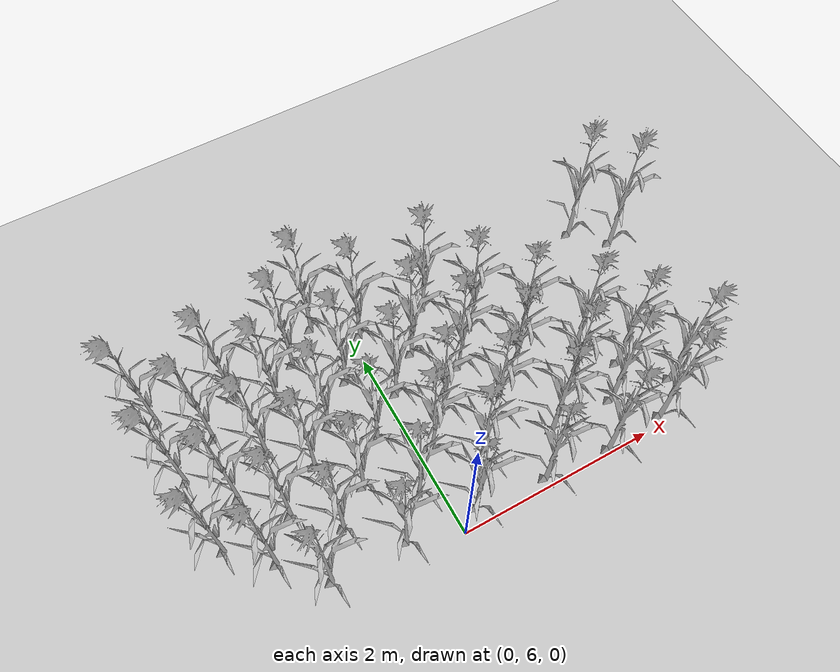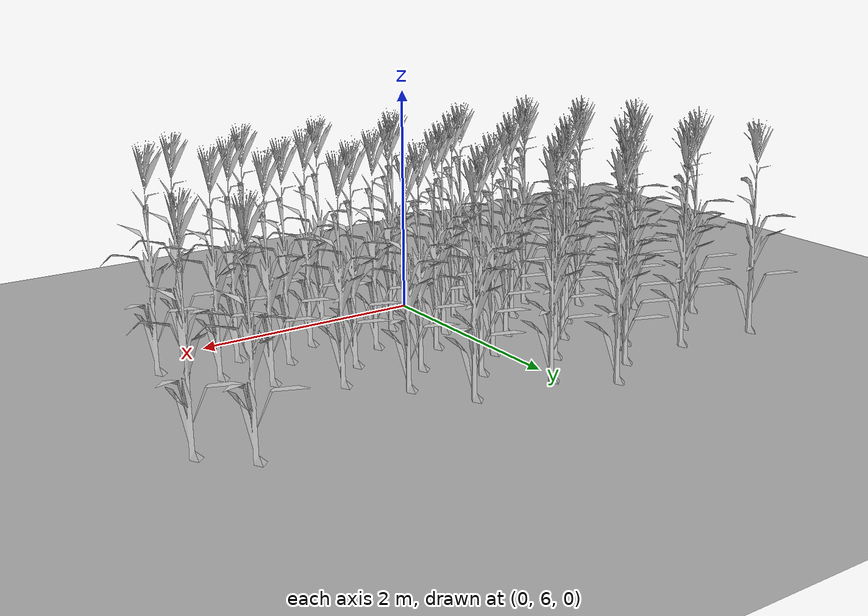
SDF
<sdf version="1.7">
 <world name="farmland_world">
  <model name="ground_plane">
   <static>1</static>
   <link name="link">
    <collision name="collision">
     <geometry><plane><normal>0 0 1</normal><size>40.0 40.0</size></plane></geometry>
     <surface><friction><ode><mu>100</mu><mu2>50</mu2></ode></friction></surface>
    </collision>
    <visual name="visual">
     <cast_shadows>0</cast_shadows>
     <geometry><plane><normal>0 0 1</normal><size>40.0 40.0</size></plane></geometry>
     <material>
      <script><uri>file://media/materials/scripts/gazebo.material</uri><name>Gazebo/Grey</name></script>
     </material>
    </visual>
   </link>
  </model>
  <model name="tree_3_17">
   <static>1</static>
   <link name="link">
    <collision name="collision">
     <geometry><mesh><uri>model://Corn_low_poly/corn.obj</uri><scale>1 1 1</scale></mesh></geometry>
     <surface><friction><ode><mu>100</mu><mu2>50</mu2></ode></friction></surface>
    </collision>
    <visual name="visual">
     <geometry><mesh><uri>model://Corn_low_poly/corn.obj</uri><scale>1 1 1</scale></mesh></geometry>
    </visual>
   </link>
   <pose>-1.2331043694419168 6.210459773600698 0 0 0 0</pose>
  </model>
  <model name="tree_3_18">
   <static>1</static>
   <link name="link">
    <collision name="collision">
     <geometry><mesh><uri>model://Corn_low_poly/corn.obj</uri><scale>1 1 1</scale></mesh></geometry>
     <surface><friction><ode><mu>100</mu><mu2>50</mu2></ode></friction></surface>
    </collision>
    <visual name="visual">
     <geometry><mesh><uri>model://Corn_low_poly/corn.obj</uri><scale>1 1 1</scale></mesh></geometry>
    </visual>
   </link>
   <pose>-1.5919552716491105 6.589156397790697 0 0 0 0</pose>
  </model>
  <model name="tree_3_19">
   <static>1</static>
   <link name="link">
    <collision name="collision">
     <geometry><mesh><uri>model://Corn_low_poly/corn.obj</uri><scale>1 1 1</scale></mesh></geometry>
     <surface><friction><ode><mu>100</mu><mu2>50</mu2></ode></friction></surface>
    </collision>
    <visual name="visual">
     <geometry><mesh><uri>model://Corn_low_poly/corn.obj</uri><scale>1 1 1</scale></mesh></geometry>
    </visual>
   </link>
   <pose>-1.9576749632588373 6.926214422861499 0 0 0 0</pose>
  </model>
  <model name="tree_3_58">
   <static>1</static>
   <link name="link">
    <collision name="collision">
     <geometry><mesh><uri>model://Corn_low_poly/corn.obj</uri><scale>1 1 1</scale></mesh></geometry>
     <surface><friction><ode><mu>100</mu><mu2>50</mu2></ode></friction></surface>
    </collision>
    <visual name="visual">
     <geometry><mesh><uri>model://Corn_low_poly/corn.obj</uri><scale>1 1 1</scale></mesh></geometry>
    </visual>
   </link>
   <pose>-0.4912142954500292 6.206846466846374 0 0 0 0</pose>
  </model>
  <model name="tree_3_59">
   <static>1</static>
   <link name="link">
    <collision name="collision">
     <geometry><mesh><uri>model://Corn_low_poly/corn.obj</uri><scale>1 1 1</scale></mesh></geometry>
     <surface><friction><ode><mu>100</mu><mu2>50</mu2></ode></friction></surface>
    </collision>
    <visual name="visual">
     <geometry><mesh><uri>model://Corn_low_poly/corn.obj</uri><scale>1 1 1</scale></mesh></geometry>
    </visual>
   </link>
   <pose>-0.9284402881562985 6.589801662348872 0 0 0 0</pose>
  </model>
  <model name="tree_3_60">
   <static>1</static>
   <link name="link">
    <collision name="collision">
     <geometry><mesh><uri>model://Corn_low_poly/corn.obj</uri><scale>1 1 1</scale></mesh></geometry>
     <surface><friction><ode><mu>100</mu><mu2>50</mu2></ode></friction></surface>
    </collision>
    <visual name="visual">
     <geometry><mesh><uri>model://Corn_low_poly/corn.obj</uri><scale>1 1 1</scale></mesh></geometry>
    </visual>
   </link>
   <pose>-1.2962200353937587 6.928572871125287 0 0 0 0</pose>
  </model>
  <model name="tree_3_61">
   <static>1</static>
   <link name="link">
    <collision name="collision">
     <geometry><mesh><uri>model://Corn_low_poly/corn.obj</uri><scale>1 1 1</scale></mesh></geometry>
     <surface><friction><ode><mu>100</mu><mu2>50</mu2></ode></friction></surface>
    </collision>
    <visual name="visual">
     <geometry><mesh><uri>model://Corn_low_poly/corn.obj</uri><scale>1 1 1</scale></mesh></geometry>
    </visual>
   </link>
   <pose>-1.6474239404918627 7.30900446934492 0 0 0 0</pose>
  </model>
  <model name="tree_3_62">
   <static>1</static>
   <link name="link">
    <collision name="collision">
     <geometry><mesh><uri>model://Corn_low_poly/corn.obj</uri><scale>1 1 1</scale></mesh></geometry>
     <surface><friction><ode><mu>100</mu><mu2>50</mu2></ode></friction></surface>
    </collision>
    <visual name="visual">
     <geometry><mesh><uri>model://Corn_low_poly/corn.obj</uri><scale>1 1 1</scale></mesh></geometry>
    </visual>
   </link>
   <pose>-2.0073132322144356 7.690980569186514 0 0 0 0</pose>
  </model>
  <model name="tree_3_99">
   <static>1</static>
   <link name="link">
    <collision name="collision">
     <geometry><mesh><uri>model://Corn_low_poly/corn.obj</uri><scale>1 1 1</scale></mesh></geometry>
     <surface><friction><ode><mu>100</mu><mu2>50</mu2></ode></friction></surface>
    </collision>
    <visual name="visual">
     <geometry><mesh><uri>model://Corn_low_poly/corn.obj</uri><scale>1 1 1</scale></mesh></geometry>
    </visual>
   </link>
   <pose>0.21755249482552663 6.176583918930253 0 0 0 0</pose>
  </model>
  <model name="tree_3_100">
   <static>1</static>
   <link name="link">
    <collision name="collision">
     <geometry><mesh><uri>model://Corn_low_poly/corn.obj</uri><scale>1 1 1</scale></mesh></geometry>
     <surface><friction><ode><mu>100</mu><mu2>50</mu2></ode></friction></surface>
    </collision>
    <visual name="visual">
     <geometry><mesh><uri>model://Corn_low_poly/corn.obj</uri><scale>1 1 1</scale></mesh></geometry>
    </visual>
   </link>
   <pose>-0.16875573212024889 6.540329089779795 0 0 0 0</pose>
  </model>
  <model name="tree_3_101">
   <static>1</static>
   <link name="link">
    <collision name="collision">
     <geometry><mesh><uri>model://Corn_low_poly/corn.obj</uri><scale>1 1 1</scale></mesh></geometry>
     <surface><friction><ode><mu>100</mu><mu2>50</mu2></ode></friction></surface>
    </collision>
    <visual name="visual">
     <geometry><mesh><uri>model://Corn_low_poly/corn.obj</uri><scale>1 1 1</scale></mesh></geometry>
    </visual>
   </link>
   <pose>-0.5900489050490194 6.85611674523748 0 0 0 0</pose>
  </model>
  <model name="tree_3_102">
   <static>1</static>
   <link name="link">
    <collision name="collision">
     <geometry><mesh><uri>model://Corn_low_poly/corn.obj</uri><scale>1 1 1</scale></mesh></geometry>
     <surface><friction><ode><mu>100</mu><mu2>50</mu2></ode></friction></surface>
    </collision>
    <visual name="visual">
     <geometry><mesh><uri>model://Corn_low_poly/corn.obj</uri><scale>1 1 1</scale></mesh></geometry>
    </visual>
   </link>
   <pose>-0.8964899712963574 7.2489524793954505 0 0 0 0</pose>
  </model>
  <model name="tree_3_103">
   <static>1</static>
   <link name="link">
    <collision name="collision">
     <geometry><mesh><uri>model://Corn_low_poly/corn.obj</uri><scale>1 1 1</scale></mesh></geometry>
     <surface><friction><ode><mu>100</mu><mu2>50</mu2></ode></friction></surface>
    </collision>
    <visual name="visual">
     <geometry><mesh><uri>model://Corn_low_poly/corn.obj</uri><scale>1 1 1</scale></mesh></geometry>
    </visual>
   </link>
   <pose>-1.2391791958938008 7.572770602942284 0 0 0 0</pose>
  </model>
  <model name="tree_3_104">
   <static>1</static>
   <link name="link">
    <collision name="collision">
     <geometry><mesh><uri>model://Corn_low_poly/corn.obj</uri><scale>1 1 1</scale></mesh></geometry>
     <surface><friction><ode><mu>100</mu><mu2>50</mu2></ode></friction></surface>
    </collision>
    <visual name="visual">
     <geometry><mesh><uri>model://Corn_low_poly/corn.obj</uri><scale>1 1 1</scale></mesh></geometry>
    </visual>
   </link>
   <pose>-1.6165728235068906 7.967212510303245 0 0 0 0</pose>
  </model>
  <model name="tree_3_105">
   <static>1</static>
   <link name="link">
    <collision name="collision">
     <geometry><mesh><uri>model://Corn_low_poly/corn.obj</uri><scale>1 1 1</scale></mesh></geometry>
     <surface><friction><ode><mu>100</mu><mu2>50</mu2></ode></friction></surface>
    </collision>
    <visual name="visual">
     <geometry><mesh><uri>model://Corn_low_poly/corn.obj</uri><scale>1 1 1</scale></mesh></geometry>
    </visual>
   </link>
   <pose>-2.020006572990721 8.367107181429498 0 0 0 0</pose>
  </model>
  <model name="tree_3_140">
   <static>1</static>
   <link name="link">
    <collision name="collision">
     <geometry><mesh><uri>model://Corn_low_poly/corn.obj</uri><scale>1 1 1</scale></mesh></geometry>
     <surface><friction><ode><mu>100</mu><mu2>50</mu2></ode></friction></surface>
    </collision>
    <visual name="visual">
     <geometry><mesh><uri>model://Corn_low_poly/corn.obj</uri><scale>1 1 1</scale></mesh></geometry>
    </visual>
   </link>
   <pose>0.9274458561356759 6.106504313053643 0 0 0 0</pose>
  </model>
  <model name="tree_3_141">
   <static>1</static>
   <link name="link">
    <collision name="collision">
     <geometry><mesh><uri>model://Corn_low_poly/corn.obj</uri><scale>1 1 1</scale></mesh></geometry>
     <surface><friction><ode><mu>100</mu><mu2>50</mu2></ode></friction></surface>
    </collision>
    <visual name="visual">
     <geometry><mesh><uri>model://Corn_low_poly/corn.obj</uri><scale>1 1 1</scale></mesh></geometry>
    </visual>
   </link>
   <pose>0.4828474347836512 6.535133516261817 0 0 0 0</pose>
  </model>
  <model name="tree_3_142">
   <static>1</static>
   <link name="link">
    <collision name="collision">
     <geometry><mesh><uri>model://Corn_low_poly/corn.obj</uri><scale>1 1 1</scale></mesh></geometry>
     <surface><friction><ode><mu>100</mu><mu2>50</mu2></ode></friction></surface>
    </collision>
    <visual name="visual">
     <geometry><mesh><uri>model://Corn_low_poly/corn.obj</uri><scale>1 1 1</scale></mesh></geometry>
    </visual>
   </link>
   <pose>0.15964210227421233 6.873767871134555 0 0 0 0</pose>
  </model>
  <model name="tree_3_143">
   <static>1</static>
   <link name="link">
    <collision name="collision">
     <geometry><mesh><uri>model://Corn_low_poly/corn.obj</uri><scale>1 1 1</scale></mesh></geometry>
     <surface><friction><ode><mu>100</mu><mu2>50</mu2></ode></friction></surface>
    </collision>
    <visual name="visual">
     <geometry><mesh><uri>model://Corn_low_poly/corn.obj</uri><scale>1 1 1</scale></mesh></geometry>
    </visual>
   </link>
   <pose>-0.25374983148931535 7.214061114571216 0 0 0 0</pose>
  </model>
  <model name="tree_3_144">
   <static>1</static>
   <link name="link">
    <collision name="collision">
     <geometry><mesh><uri>model://Corn_low_poly/corn.obj</uri><scale>1 1 1</scale></mesh></geometry>
     <surface><friction><ode><mu>100</mu><mu2>50</mu2></ode></friction></surface>
    </collision>
    <visual name="visual">
     <geometry><mesh><uri>model://Corn_low_poly/corn.obj</uri><scale>1 1 1</scale></mesh></geometry>
    </visual>
   </link>
   <pose>-0.5968321135465497 7.565941472760978 0 0 0 0</pose>
  </model>
  <model name="tree_3_145">
   <static>1</static>
   <link name="link">
    <collision name="collision">
     <geometry><mesh><uri>model://Corn_low_poly/corn.obj</uri><scale>1 1 1</scale></mesh></geometry>
     <surface><friction><ode><mu>100</mu><mu2>50</mu2></ode></friction></surface>
    </collision>
    <visual name="visual">
     <geometry><mesh><uri>model://Corn_low_poly/corn.obj</uri><scale>1 1 1</scale></mesh></geometry>
    </visual>
   </link>
   <pose>-0.9258639095165091 7.982571933075339 0 0 0 0</pose>
  </model>
  <model name="tree_3_146">
   <static>1</static>
   <link name="link">
    <collision name="collision">
     <geometry><mesh><uri>model://Corn_low_poly/corn.obj</uri><scale>1 1 1</scale></mesh></geometry>
     <surface><friction><ode><mu>100</mu><mu2>50</mu2></ode></friction></surface>
    </collision>
    <visual name="visual">
     <geometry><mesh><uri>model://Corn_low_poly/corn.obj</uri><scale>1 1 1</scale></mesh></geometry>
    </visual>
   </link>
   <pose>-1.2895930299621743 8.279267376874262 0 0 0 0</pose>
  </model>
  <model name="tree_3_181">
   <static>1</static>
   <link name="link">
    <collision name="collision">
     <geometry><mesh><uri>model://Corn_low_poly/corn.obj</uri><scale>1 1 1</scale></mesh></geometry>
     <surface><friction><ode><mu>100</mu><mu2>50</mu2></ode></friction></surface>
    </collision>
    <visual name="visual">
     <geometry><mesh><uri>model://Corn_low_poly/corn.obj</uri><scale>1 1 1</scale></mesh></geometry>
    </visual>
   </link>
   <pose>1.60337882264368 6.06041068458008 0 0 0 0</pose>
  </model>
  <model name="tree_3_182">
   <static>1</static>
   <link name="link">
    <collision name="collision">
     <geometry><mesh><uri>model://Corn_low_poly/corn.obj</uri><scale>1 1 1</scale></mesh></geometry>
     <surface><friction><ode><mu>100</mu><mu2>50</mu2></ode></friction></surface>
    </collision>
    <visual name="visual">
     <geometry><mesh><uri>model://Corn_low_poly/corn.obj</uri><scale>1 1 1</scale></mesh></geometry>
    </visual>
   </link>
   <pose>1.2512331748764136 6.485962964849967 0 0 0 0</pose>
  </model>
  <model name="tree_3_183">
   <static>1</static>
   <link name="link">
    <collision name="collision">
     <geometry><mesh><uri>model://Corn_low_poly/corn.obj</uri><scale>1 1 1</scale></mesh></geometry>
     <surface><friction><ode><mu>100</mu><mu2>50</mu2></ode></friction></surface>
    </collision>
    <visual name="visual">
     <geometry><mesh><uri>model://Corn_low_poly/corn.obj</uri><scale>1 1 1</scale></mesh></geometry>
    </visual>
   </link>
   <pose>0.836358025144633 6.8659756439430755 0 0 0 0</pose>
  </model>
  <model name="tree_3_184">
   <static>1</static>
   <link name="link">
    <collision name="collision">
     <geometry><mesh><uri>model://Corn_low_poly/corn.obj</uri><scale>1 1 1</scale></mesh></geometry>
     <surface><friction><ode><mu>100</mu><mu2>50</mu2></ode></friction></surface>
    </collision>
    <visual name="visual">
     <geometry><mesh><uri>model://Corn_low_poly/corn.obj</uri><scale>1 1 1</scale></mesh></geometry>
    </visual>
   </link>
   <pose>0.42747251324293034 7.156515039606419 0 0 0 0</pose>
  </model>
  <model name="tree_3_185">
   <static>1</static>
   <link name="link">
    <collision name="collision">
     <geometry><mesh><uri>model://Corn_low_poly/corn.obj</uri><scale>1 1 1</scale></mesh></geometry>
     <surface><friction><ode><mu>100</mu><mu2>50</mu2></ode></friction></surface>
    </collision>
    <visual name="visual">
     <geometry><mesh><uri>model://Corn_low_poly/corn.obj</uri><scale>1 1 1</scale></mesh></geometry>
    </visual>
   </link>
   <pose>0.12799868860328595 7.543533081642551 0 0 0 0</pose>
  </model>
  <model name="tree_3_186">
   <static>1</static>
   <link name="link">
    <collision name="collision">
     <geometry><mesh><uri>model://Corn_low_poly/corn.obj</uri><scale>1 1 1</scale></mesh></geometry>
     <surface><friction><ode><mu>100</mu><mu2>50</mu2></ode></friction></surface>
    </collision>
    <visual name="visual">
     <geometry><mesh><uri>model://Corn_low_poly/corn.obj</uri><scale>1 1 1</scale></mesh></geometry>
    </visual>
   </link>
   <pose>-0.2396206075363925 7.901621543031043 0 0 0 0</pose>
  </model>
  <model name="tree_3_187">
   <static>1</static>
   <link name="link">
    <collision name="collision">
     <geometry><mesh><uri>model://Corn_low_poly/corn.obj</uri><scale>1 1 1</scale></mesh></geometry>
     <surface><friction><ode><mu>100</mu><mu2>50</mu2></ode></friction></surface>
    </collision>
    <visual name="visual">
     <geometry><mesh><uri>model://Corn_low_poly/corn.obj</uri><scale>1 1 1</scale></mesh></geometry>
    </visual>
   </link>
   <pose>-0.621319857274464 8.327356366789965 0 0 0 0</pose>
  </model>
  <model name="tree_3_222">
   <static>1</static>
   <link name="link">
    <collision name="collision">
     <geometry><mesh><uri>model://Corn_low_poly/corn.obj</uri><scale>1 1 1</scale></mesh></geometry>
     <surface><friction><ode><mu>100</mu><mu2>50</mu2></ode></friction></surface>
    </collision>
    <visual name="visual">
     <geometry><mesh><uri>model://Corn_low_poly/corn.obj</uri><scale>1 1 1</scale></mesh></geometry>
    </visual>
   </link>
   <pose>2.232086854160586 6.102185124260705 0 0 0 0</pose>
  </model>
  <model name="tree_3_223">
   <static>1</static>
   <link name="link">
    <collision name="collision">
     <geometry><mesh><uri>model://Corn_low_poly/corn.obj</uri><scale>1 1 1</scale></mesh></geometry>
     <surface><friction><ode><mu>100</mu><mu2>50</mu2></ode></friction></surface>
    </collision>
    <visual name="visual">
     <geometry><mesh><uri>model://Corn_low_poly/corn.obj</uri><scale>1 1 1</scale></mesh></geometry>
    </visual>
   </link>
   <pose>1.9145695520046495 6.468401170258431 0 0 0 0</pose>
  </model>
  <model name="tree_3_224">
   <static>1</static>
   <link name="link">
    <collision name="collision">
     <geometry><mesh><uri>model://Corn_low_poly/corn.obj</uri><scale>1 1 1</scale></mesh></geometry>
     <surface><friction><ode><mu>100</mu><mu2>50</mu2></ode></friction></surface>
    </collision>
    <visual name="visual">
     <geometry><mesh><uri>model://Corn_low_poly/corn.obj</uri><scale>1 1 1</scale></mesh></geometry>
    </visual>
   </link>
   <pose>1.5947726994043212 6.753840933917702 0 0 0 0</pose>
  </model>
  <model name="tree_3_225">
   <static>1</static>
   <link name="link">
    <collision name="collision">
     <geometry><mesh><uri>model://Corn_low_poly/corn.obj</uri><scale>1 1 1</scale></mesh></geometry>
     <surface><friction><ode><mu>100</mu><mu2>50</mu2></ode></friction></surface>
    </collision>
    <visual name="visual">
     <geometry><mesh><uri>model://Corn_low_poly/corn.obj</uri><scale>1 1 1</scale></mesh></geometry>
    </visual>
   </link>
   <pose>1.1982209731242266 7.141648262305647 0 0 0 0</pose>
  </model>
  <model name="tree_3_226">
   <static>1</static>
   <link name="link">
    <collision name="collision">
     <geometry><mesh><uri>model://Corn_low_poly/corn.obj</uri><scale>1 1 1</scale></mesh></geometry>
     <surface><friction><ode><mu>100</mu><mu2>50</mu2></ode></friction></surface>
    </collision>
    <visual name="visual">
     <geometry><mesh><uri>model://Corn_low_poly/corn.obj</uri><scale>1 1 1</scale></mesh></geometry>
    </visual>
   </link>
   <pose>0.8053602947101685 7.499695394200486 0 0 0 0</pose>
  </model>
  <model name="tree_3_227">
   <static>1</static>
   <link name="link">
    <collision name="collision">
     <geometry><mesh><uri>model://Corn_low_poly/corn.obj</uri><scale>1 1 1</scale></mesh></geometry>
     <surface><friction><ode><mu>100</mu><mu2>50</mu2></ode></friction></surface>
    </collision>
    <visual name="visual">
     <geometry><mesh><uri>model://Corn_low_poly/corn.obj</uri><scale>1 1 1</scale></mesh></geometry>
    </visual>
   </link>
   <pose>0.47354746825177624 7.859065015660609 0 0 0 0</pose>
  </model>
  <model name="tree_3_228">
   <static>1</static>
   <link name="link">
    <collision name="collision">
     <geometry><mesh><uri>model://Corn_low_poly/corn.obj</uri><scale>1 1 1</scale></mesh></geometry>
     <surface><friction><ode><mu>100</mu><mu2>50</mu2></ode></friction></surface>
    </collision>
    <visual name="visual">
     <geometry><mesh><uri>model://Corn_low_poly/corn.obj</uri><scale>1 1 1</scale></mesh></geometry>
    </visual>
   </link>
   <pose>0.11117017684513064 8.28894933325707 0 0 0 0</pose>
  </model>
  <model name="tree_3_229">
   <static>1</static>
   <link name="link">
    <collision name="collision">
     <geometry><mesh><uri>model://Corn_low_poly/corn.obj</uri><scale>1 1 1</scale></mesh></geometry>
     <surface><friction><ode><mu>100</mu><mu2>50</mu2></ode></friction></surface>
    </collision>
    <visual name="visual">
     <geometry><mesh><uri>model://Corn_low_poly/corn.obj</uri><scale>1 1 1</scale></mesh></geometry>
    </visual>
   </link>
   <pose>-0.28516345834287327 8.605283839898764 0 0 0 0</pose>
  </model>
  <model name="tree_3_264">
   <static>1</static>
   <link name="link">
    <collision name="collision">
     <geometry><mesh><uri>model://Corn_low_poly/corn.obj</uri><scale>1 1 1</scale></mesh></geometry>
     <surface><friction><ode><mu>100</mu><mu2>50</mu2></ode></friction></surface>
    </collision>
    <visual name="visual">
     <geometry><mesh><uri>model://Corn_low_poly/corn.obj</uri><scale>1 1 1</scale></mesh></geometry>
    </visual>
   </link>
   <pose>2.560902879664028 6.377219447885482 0 0 0 0</pose>
  </model>
  <model name="tree_3_265">
   <static>1</static>
   <link name="link">
    <collision name="collision">
     <geometry><mesh><uri>model://Corn_low_poly/corn.obj</uri><scale>1 1 1</scale></mesh></geometry>
     <surface><friction><ode><mu>100</mu><mu2>50</mu2></ode></friction></surface>
    </collision>
    <visual name="visual">
     <geometry><mesh><uri>model://Corn_low_poly/corn.obj</uri><scale>1 1 1</scale></mesh></geometry>
    </visual>
   </link>
   <pose>2.2047407519095357 6.770448435675978 0 0 0 0</pose>
  </model>
  <model name="tree_3_266">
   <static>1</static>
   <link name="link">
    <collision name="collision">
     <geometry><mesh><uri>model://Corn_low_poly/corn.obj</uri><scale>1 1 1</scale></mesh></geometry>
     <surface><friction><ode><mu>100</mu><mu2>50</mu2></ode></friction></surface>
    </collision>
    <visual name="visual">
     <geometry><mesh><uri>model://Corn_low_poly/corn.obj</uri><scale>1 1 1</scale></mesh></geometry>
    </visual>
   </link>
   <pose>1.9217168912803553 7.105856738249405 0 0 0 0</pose>
  </model>
  <model name="tree_3_267">
   <static>1</static>
   <link name="link">
    <collision name="collision">
     <geometry><mesh><uri>model://Corn_low_poly/corn.obj</uri><scale>1 1 1</scale></mesh></geometry>
     <surface><friction><ode><mu>100</mu><mu2>50</mu2></ode></friction></surface>
    </collision>
    <visual name="visual">
     <geometry><mesh><uri>model://Corn_low_poly/corn.obj</uri><scale>1 1 1</scale></mesh></geometry>
    </visual>
   </link>
   <pose>1.494961894985226 7.45936336704895 0 0 0 0</pose>
  </model>
  <model name="tree_3_268">
   <static>1</static>
   <link name="link">
    <collision name="collision">
     <geometry><mesh><uri>model://Corn_low_poly/corn.obj</uri><scale>1 1 1</scale></mesh></geometry>
     <surface><friction><ode><mu>100</mu><mu2>50</mu2></ode></friction></surface>
    </collision>
    <visual name="visual">
     <geometry><mesh><uri>model://Corn_low_poly/corn.obj</uri><scale>1 1 1</scale></mesh></geometry>
    </visual>
   </link>
   <pose>1.1308186313788458 7.827166384457124 0 0 0 0</pose>
  </model>
  <model name="tree_3_269">
   <static>1</static>
   <link name="link">
    <collision name="collision">
     <geometry><mesh><uri>model://Corn_low_poly/corn.obj</uri><scale>1 1 1</scale></mesh></geometry>
     <surface><friction><ode><mu>100</mu><mu2>50</mu2></ode></friction></surface>
    </collision>
    <visual name="visual">
     <geometry><mesh><uri>model://Corn_low_poly/corn.obj</uri><scale>1 1 1</scale></mesh></geometry>
    </visual>
   </link>
   <pose>0.8289575122291915 8.263160270389342 0 0 0 0</pose>
  </model>
  <model name="tree_3_316">
   <static>1</static>
   <link name="link">
    <collision name="collision">
     <geometry><mesh><uri>model://Corn_low_poly/corn.obj</uri><scale>1 1 1</scale></mesh></geometry>
     <surface><friction><ode><mu>100</mu><mu2>50</mu2></ode></friction></surface>
    </collision>
    <visual name="visual">
     <geometry><mesh><uri>model://Corn_low_poly/corn.obj</uri><scale>1 1 1</scale></mesh></geometry>
    </visual>
   </link>
   <pose>2.9742289940183246 8.002054161315618 0 0 0 0</pose>
  </model>
  <model name="tree_3_317">
   <static>1</static>
   <link name="link">
    <collision name="collision">
     <geometry><mesh><uri>model://Corn_low_poly/corn.obj</uri><scale>1 1 1</scale></mesh></geometry>
     <surface><friction><ode><mu>100</mu><mu2>50</mu2></ode></friction></surface>
    </collision>
    <visual name="visual">
     <geometry><mesh><uri>model://Corn_low_poly/corn.obj</uri><scale>1 1 1</scale></mesh></geometry>
    </visual>
   </link>
   <pose>2.6540491140900757 8.313933340181654 0 0 0 0</pose>
  </model>
 </world>
</sdf>
